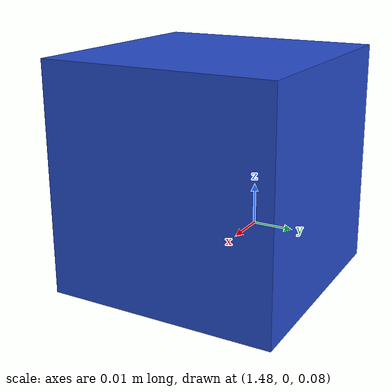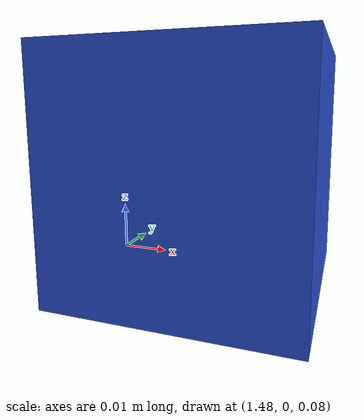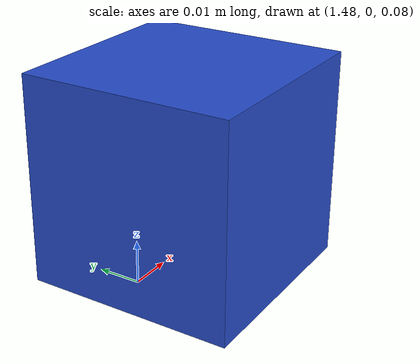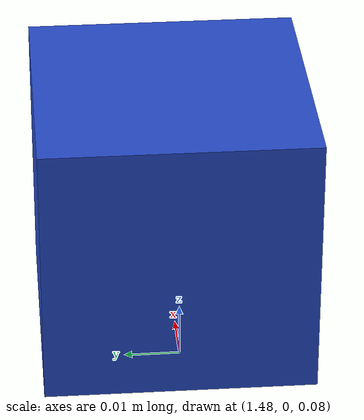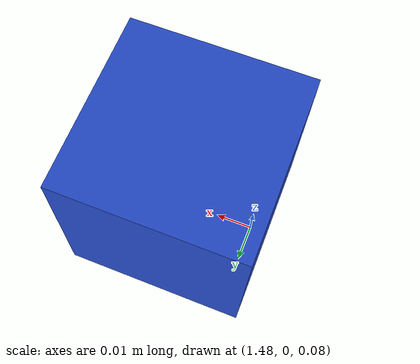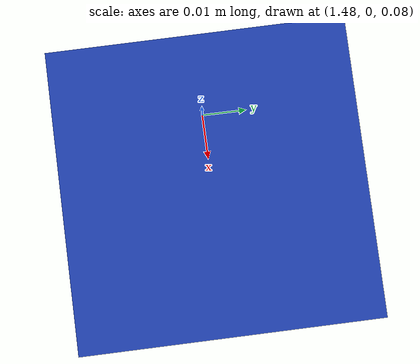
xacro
<?xml version="1.0"?>
<robot name="objects" xmlns:xacro="http://ros.org/wiki/xacro">

	<include filename="$(find raw_description)/urdf/materials.urdf.xacro" />

	<xacro:macro name="rectangle" params="name parent width height length color *origin">
		<link name="${name}_link">
			<inertial>
				<insert_block name="origin" />
				<mass value="0.5" />
				<massMatrix value="0" />
			    <inertia  ixx="0.00001" ixy="0.0"  ixz="0.0"  iyy="0.00001"  iyz="0.0"  izz="0.00001" />
			</inertial>

			<visual>
				<insert_block name="origin" />
				<geometry>
					<box size="${length} ${width} ${height}"/>
				</geometry>
				<material name="Blue" />
			</visual>

			<collision>
				<insert_block name="origin" />
				<geometry>
			   		<box size="${length} ${width} ${height}"/>
				</geometry>
			</collision >
		</link>

	</xacro:macro>

	<xacro:rectangle name="square1" parent="dummy_link" width="0.05" height="0.05" length="0.05" color="Blue">
	    <origin xyz="1.5 0 0.1" rpy="0 0 0" />
	</xacro:rectangle>

</robot>
